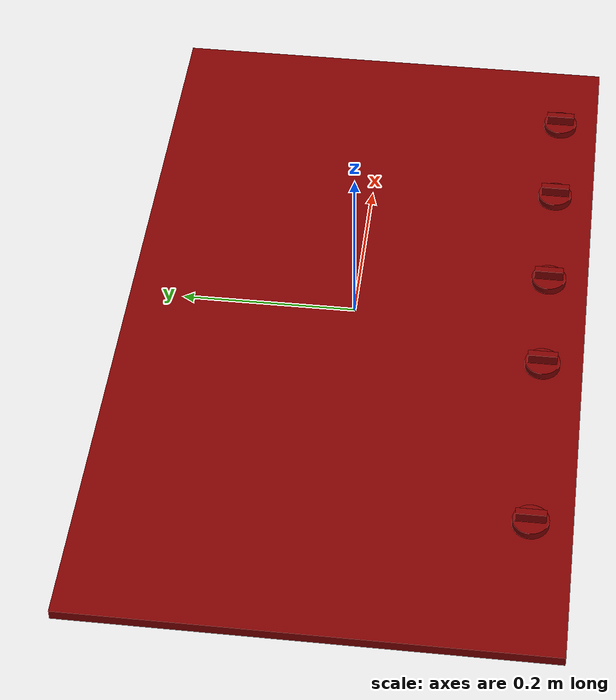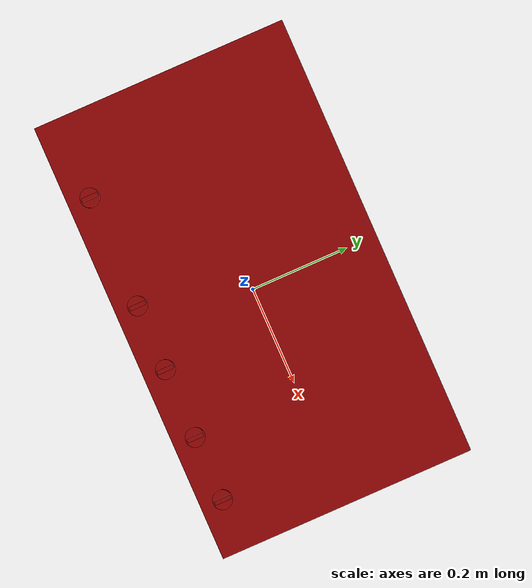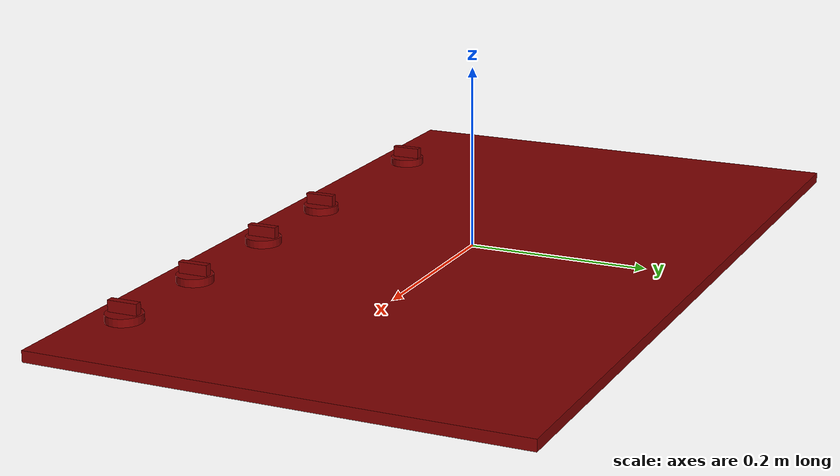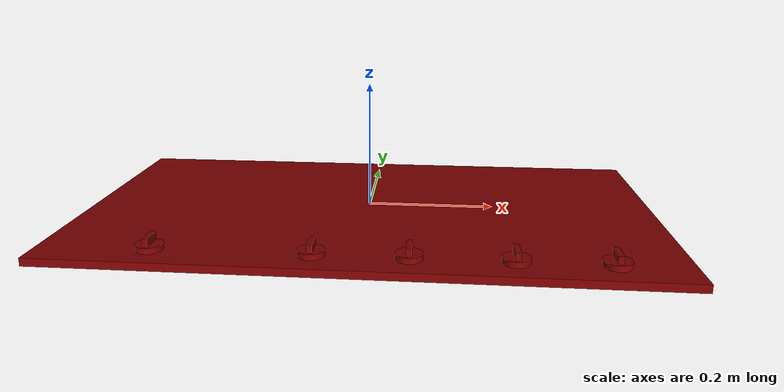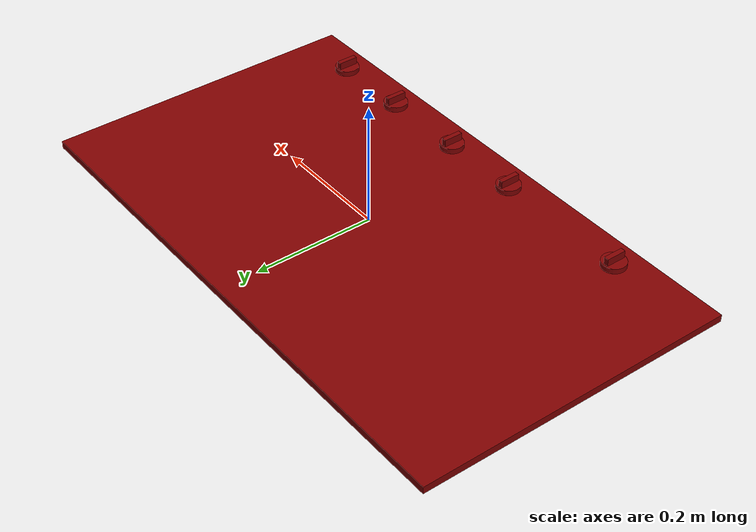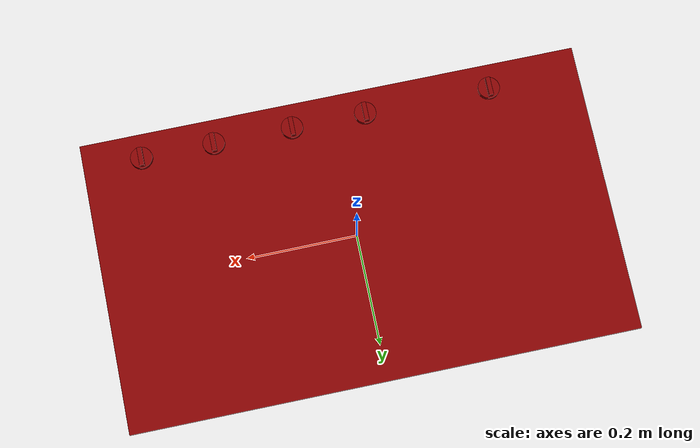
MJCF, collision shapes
<?xml version='1.0' encoding='UTF-8'?>
<mujoco model="model">
  <compiler angle="radian"/>
  <asset>
    <mesh file="visuals/knob_front_center.obj" name="knob_front_center_vis"/>
    <mesh file="visuals/knob_front_left.obj" name="knob_front_left_vis"/>
    <mesh file="visuals/knob_front_right.obj" name="knob_front_right_vis"/>
    <mesh file="visuals/knob_rear_center.obj" name="knob_rear_center_vis"/>
    <mesh file="visuals/knob_rear_right.obj" name="knob_rear_right_vis"/>
    <mesh file="visuals/Body001.obj" name="Body001_vis"/>
    <texture file="visuals/T_BC001.png" name="Body001_material" type="2d"/>
    <material name="Body001_material" rgba="1 1 1 1.0" texture="Body001_material" shininess="5" specular="5"/>
    <texture file="visuals/T_BC001.png" name="knob_front_center_material" type="2d"/>
    <material name="knob_front_center_material" rgba="1 1 1 1.0" texture="knob_front_center_material" shininess="0.4472135901451111" specular="0.3103448502657381"/>
    <texture file="visuals/T_BC001.png" name="knob_front_left_material" type="2d"/>
    <material name="knob_front_left_material" rgba="1 1 1 1.0" texture="knob_front_left_material" shininess="0.4472135901451111" specular="0.3103448502657381"/>
    <texture file="visuals/T_BC001.png" name="knob_front_right_material" type="2d"/>
    <material name="knob_front_right_material" rgba="1 1 1 1.0" texture="knob_front_right_material" shininess="0.4472135901451111" specular="0.3103448502657381"/>
    <texture file="visuals/T_BC001.png" name="knob_rear_center_material" type="2d"/>
    <material name="knob_rear_center_material" rgba="1 1 1 1.0" texture="knob_rear_center_material" shininess="0.4472135901451111" specular="0.3103448502657381"/>
    <texture file="visuals/T_BC001.png" name="knob_rear_right_material" type="2d"/>
    <material name="knob_rear_right_material" rgba="1 1 1 1.0" texture="knob_rear_right_material" shininess="0.4472135901451111" specular="0.3103448502657381"/>
  </asset>
  <default>
    <default class="visual">
      <geom conaffinity="0" contype="0" group="1" type="mesh"/>
    </default>
    <default class="collision">
      <geom group="0" rgba="0.5 0 0 0.5"/>
    </default>
    <default class="spawn">
      <geom group="0" rgba="1 1 1 0.5" contype="0" conaffinity="0"/>
      <site group="0" rgba="1 1 1 0.5"/>
    </default>
    <default class="region">
      <geom group="1" conaffinity="0" contype="0" rgba="0 1 0 0"/>
    </default>
  </default>
  <worldbody>
    <body>
      <body name="object">
        <site type="cylinder" rgba="0.5 0 0 0.5" size="0.07387260347604752 4.999999873689376e-05" pos="0.294095 0.136065 -0.006261" name="burner_on_rear_right"/>
        <site type="cylinder" rgba="0.5 0 0 0.5" size="0.08639733493328094 4.999999873689376e-05" pos="0.020619 0.133931 -0.006272" name="burner_on_rear_center"/>
        <site type="cylinder" rgba="0.5 0 0 0.5" size="0.0875006914138794 4.999999873689376e-05" pos="0.287714 -0.059038 -0.006277" name="burner_on_front_right"/>
        <site type="cylinder" rgba="0.5 0 0 0.5" size="0.10232172161340714 4.999999873689376e-05" pos="-0.270308 0.040160 -0.006319" name="burner_on_front_left"/>
        <site type="cylinder" rgba="0.5 0 0 0.5" size="0.07508642226457596 4.999999873689376e-05" pos="0.011758 -0.055718 -0.006211" name="burner_on_front_center"/>
        <geom mesh="Body001_vis" type="mesh" solimp="0.998 0.998 0.001" solref="0.001 1" density="100" friction="0.95 0.3 0.1" class="visual" material="Body001_material"/>
        <geom class="collision" type="box" pos="-0.000010 -0.000987 -0.010991" size="0.461265504360199 0.2655807435512543 0.006072795484215021" quat="1.0 0.0 0.0 0.0"/>
        <body name="knob_front_center">
          <joint axis="0.0 0.0 1.0" pos="-0.061302 -0.220767 0.004997" limited="true" name="knob_front_center_joint" range="0.0 3.6651914291880923" type="hinge" damping="0.05" armature="0.001" springref="-0.01"/>
          <geom mesh="knob_front_center_vis" type="mesh" solimp="0.998 0.998 0.001" solref="0.001 1" density="100" friction="0.95 0.3 0.1" class="visual" material="knob_front_center_material"/>
          <geom class="collision" type="cylinder" pos="-0.061276 -0.220713 0.000540" size="0.01997859589755535 0.004390303511172533" quat="1.0 0.0 0.0 0.0"/>
          <geom class="collision" type="box" pos="-0.061292 -0.220454 0.010511" size="0.004127315245568752 0.016763195395469666 0.00674916198477149" quat="1.0 0.0 0.0 0.0"/>
        </body>
        <body name="knob_front_left">
          <joint axis="0.0 0.0 1.0" pos="-0.292604 -0.220767 0.004997" limited="true" name="knob_front_left_joint" range="0.0 3.6651914291880923" type="hinge" damping="0.05" armature="0.001" springref="-0.01"/>
          <geom mesh="knob_front_left_vis" type="mesh" solimp="0.998 0.998 0.001" solref="0.001 1" density="100" friction="0.95 0.3 0.1" class="visual" material="knob_front_left_material"/>
          <geom class="collision" type="box" pos="-0.292740 -0.220454 0.010511" size="0.004127315245568752 0.016763195395469666 0.00674916198477149" quat="1.0 0.0 0.0 0.0"/>
          <geom class="collision" type="cylinder" pos="-0.292723 -0.220713 0.000540" size="0.01997859589755535 0.004390303511172533" quat="1.0 0.0 0.0 0.0"/>
        </body>
        <body name="knob_front_right">
          <joint axis="0.0 0.0 1.0" pos="0.353469 -0.220767 0.004997" limited="true" name="knob_front_right_joint" range="0.0 3.6651914291880923" type="hinge" damping="0.05" armature="0.001" springref="-0.01"/>
          <geom mesh="knob_front_right_vis" type="mesh" solimp="0.998 0.998 0.001" solref="0.001 1" density="100" friction="0.95 0.3 0.1" class="visual" material="knob_front_right_material"/>
          <geom class="collision" type="cylinder" pos="0.353488 -0.220713 0.000540" size="0.01997859589755535 0.004390303511172533" quat="1.0 0.0 0.0 0.0"/>
          <geom class="collision" type="box" pos="0.353472 -0.220454 0.010511" size="0.004127315245568752 0.016763195395469666 0.00674916198477149" quat="1.0 0.0 0.0 0.0"/>
        </body>
        <body name="knob_rear_center">
          <joint axis="0.0 0.0 1.0" pos="0.074935 -0.220767 0.004997" limited="true" name="knob_rear_center_joint" range="0.0 3.6651914291880923" type="hinge" damping="0.05" armature="0.001" springref="-0.01"/>
          <geom mesh="knob_rear_center_vis" type="mesh" solimp="0.998 0.998 0.001" solref="0.001 1" density="100" friction="0.95 0.3 0.1" class="visual" material="knob_rear_center_material"/>
          <geom class="collision" type="cylinder" pos="0.074968 -0.220713 0.000540" size="0.01997859589755535 0.004390303511172533" quat="1.0 0.0 0.0 0.0"/>
          <geom class="collision" type="box" pos="0.074951 -0.220454 0.010511" size="0.004127315245568752 0.016763195395469666 0.00674916198477149" quat="1.0 0.0 0.0 0.0"/>
        </body>
        <body name="knob_rear_right">
          <joint axis="0.0 0.0 1.0" pos="0.220527 -0.220767 0.004997" limited="true" name="knob_rear_right_joint" range="0.0 3.6651914291880923" type="hinge" damping="0.05" armature="0.001" springref="-0.01"/>
          <geom mesh="knob_rear_right_vis" type="mesh" solimp="0.998 0.998 0.001" solref="0.001 1" density="100" friction="0.95 0.3 0.1" class="visual" material="knob_rear_right_material"/>
          <geom class="collision" type="cylinder" pos="0.220038 -0.220713 0.000540" size="0.01997859589755535 0.004390303511172533" quat="1.0 0.0 0.0 0.0"/>
          <geom class="collision" type="box" pos="0.220375 -0.220454 0.010511" size="0.004127315245568752 0.016763195395469666 0.00674916198477149" quat="1.0 0.0 0.0 0.0"/>
        </body>
        <geom class="region" name="reg_main" type="box" pos="0.0 0.0 -0.0115485" size="0.459451 0.261957 0.0049855"/>
      </body>
    </body>
  </worldbody>
  <actuator>
    <motor name="knob_front_center_joint_actuator" joint="knob_front_center_joint" gear="10"/>
    <motor name="knob_front_left_joint_actuator" joint="knob_front_left_joint" gear="10"/>
    <motor name="knob_front_right_joint_actuator" joint="knob_front_right_joint" gear="10"/>
    <motor name="knob_rear_center_joint_actuator" joint="knob_rear_center_joint" gear="10"/>
    <motor name="knob_rear_right_joint_actuator" joint="knob_rear_right_joint" gear="10"/>
  </actuator>
</mujoco>
